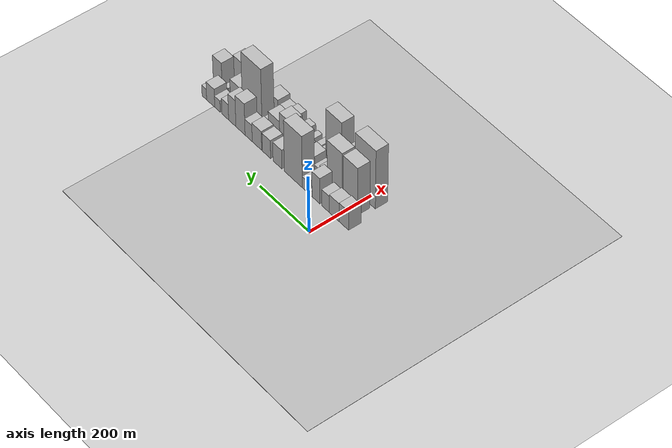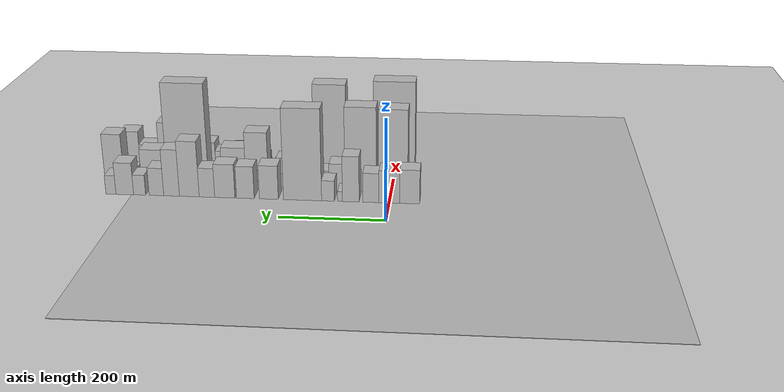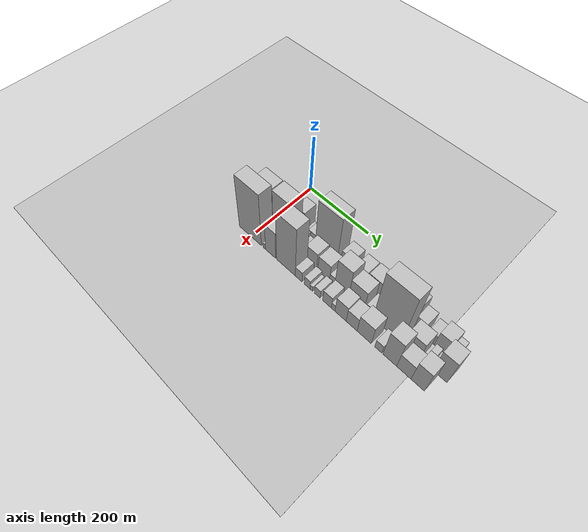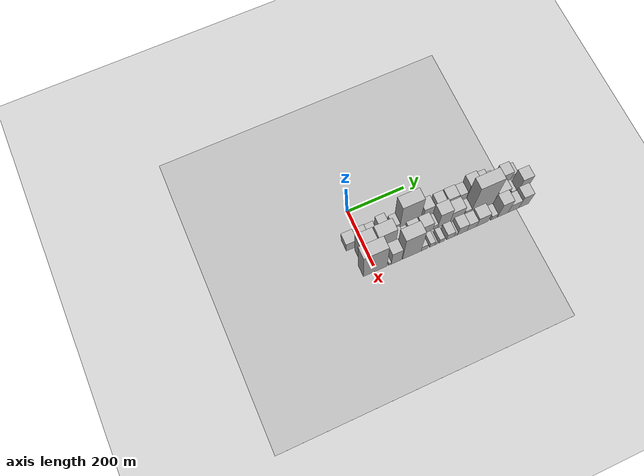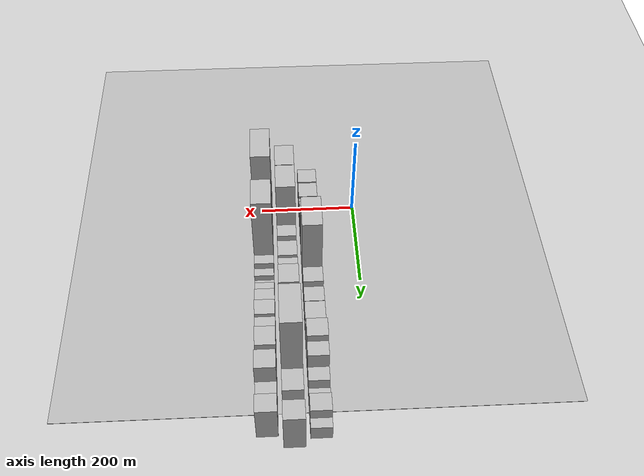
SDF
<sdf version="1.6">
 <world name="default">
  <include><name>ground_plane_1</name><uri>model://HANNAS_ground_plane</uri></include>
  <include>
   <name>ground_plane_2</name>
   <uri>model://HANNAS_ground_plane</uri>
   <pose>100 0 0  0 0 0</pose>
  </include>
  <model name="building_17">
   <static>1</static>
   <pose>100.0000 -38.5526 0 0.000000 0.000000 0.000000</pose>
   <link name="link">
    <pose>0 0 34.50 0 0 0</pose>
    <collision name="collision"><geometry><box><size>40.0000 37.9906 69.0000</size></box></geometry></collision>
    <visual name="visual">
     <cast_shadows>0</cast_shadows>
     <geometry><box><size>40.0000 37.9906 69.0000</size></box></geometry>
     <material>
      <script>
       <uri>model://HANNAS_wall/materials/scripts</uri>
       <uri>model://HANNAS_wall/materials/textures</uri>
       <name>vrc/HANNAS_wall</name>
      </script>
     </material>
    </visual>
   </link>
  </model>
  <model name="building_18">
   <static>1</static>
   <pose>100.0000 0.2296 0 0.000000 0.000000 0.000000</pose>
   <link name="link">
    <pose>0 0 33.00 0 0 0</pose>
    <collision name="collision"><geometry><box><size>40.0000 39.5738 66.0000</size></box></geometry></collision>
    <visual name="visual">
     <cast_shadows>0</cast_shadows>
     <geometry><box><size>40.0000 39.5738 66.0000</size></box></geometry>
     <material>
      <script>
       <uri>model://HANNAS_wall/materials/scripts</uri>
       <uri>model://HANNAS_wall/materials/textures</uri>
       <name>vrc/HANNAS_wall</name>
      </script>
     </material>
    </visual>
   </link>
  </model>
  <model name="building_19">
   <static>1</static>
   <pose>100.0000 35.4518 0 0.000000 0.000000 0.000000</pose>
   <link name="link">
    <pose>0 0 30.00 0 0 0</pose>
    <collision name="collision"><geometry><box><size>40.0000 30.8706 60.0000</size></box></geometry></collision>
    <visual name="visual">
     <cast_shadows>0</cast_shadows>
     <geometry><box><size>40.0000 30.8706 60.0000</size></box></geometry>
     <material>
      <script>
       <uri>model://HANNAS_wall/materials/scripts</uri>
       <uri>model://HANNAS_wall/materials/textures</uri>
       <name>vrc/HANNAS_wall</name>
      </script>
     </material>
    </visual>
   </link>
  </model>
  <model name="building_20">
   <static>1</static>
   <pose>100.0000 73.9305 0 0.000000 0.000000 0.000000</pose>
   <link name="link">
    <pose>0 0 46.50 0 0 0</pose>
    <collision name="collision"><geometry><box><size>40.0000 32.0868 93.0000</size></box></geometry></collision>
    <visual name="visual">
     <cast_shadows>0</cast_shadows>
     <geometry><box><size>40.0000 32.0868 93.0000</size></box></geometry>
     <material>
      <script>
       <uri>model://HANNAS_wall/materials/scripts</uri>
       <uri>model://HANNAS_wall/materials/textures</uri>
       <name>vrc/HANNAS_wall</name>
      </script>
     </material>
    </visual>
   </link>
  </model>
  <model name="building_21">
   <static>1</static>
   <pose>100.0000 94.6951 0 0.000000 0.000000 0.000000</pose>
   <link name="link">
    <pose>0 0 10.50 0 0 0</pose>
    <collision name="collision"><geometry><box><size>40.0000 9.4425 21.0000</size></box></geometry></collision>
    <visual name="visual">
     <cast_shadows>0</cast_shadows>
     <geometry><box><size>40.0000 9.4425 21.0000</size></box></geometry>
     <material>
      <script>
       <uri>model://HANNAS_wall/materials/scripts</uri>
       <uri>model://HANNAS_wall/materials/textures</uri>
       <name>vrc/HANNAS_wall</name>
      </script>
     </material>
    </visual>
   </link>
  </model>
  <model name="building_22">
   <static>1</static>
   <pose>100.0000 117.7082 0 0.000000 0.000000 0.000000</pose>
   <link name="link">
    <pose>0 0 21.00 0 0 0</pose>
    <collision name="collision"><geometry><box><size>40.0000 24.5837 42.0000</size></box></geometry></collision>
    <visual name="visual">
     <cast_shadows>0</cast_shadows>
     <geometry><box><size>40.0000 24.5837 42.0000</size></box></geometry>
     <material>
      <script>
       <uri>model://HANNAS_wall/materials/scripts</uri>
       <uri>model://HANNAS_wall/materials/textures</uri>
       <name>vrc/HANNAS_wall</name>
      </script>
     </material>
    </visual>
   </link>
  </model>
  <model name="building_23">
   <static>1</static>
   <pose>100.0000 166.8119 0 0.000000 0.000000 0.000000</pose>
   <link name="link">
    <pose>0 0 93.00 0 0 0</pose>
    <collision name="collision"><geometry><box><size>40.0000 73.6238 186.0000</size></box></geometry></collision>
    <visual name="visual">
     <cast_shadows>0</cast_shadows>
     <geometry><box><size>40.0000 73.6238 186.0000</size></box></geometry>
     <material>
      <script>
       <uri>model://HANNAS_wall/materials/scripts</uri>
       <uri>model://HANNAS_wall/materials/textures</uri>
       <name>vrc/HANNAS_wall</name>
      </script>
     </material>
    </visual>
   </link>
  </model>
  <model name="building_24">
   <static>1</static>
   <pose>100.0000 231.9970 0 0.000000 0.000000 0.000000</pose>
   <link name="link">
    <pose>0 0 34.50 0 0 0</pose>
    <collision name="collision"><geometry><box><size>40.0000 36.7465 69.0000</size></box></geometry></collision>
    <visual name="visual">
     <cast_shadows>0</cast_shadows>
     <geometry><box><size>40.0000 36.7465 69.0000</size></box></geometry>
     <material>
      <script>
       <uri>model://HANNAS_wall/materials/scripts</uri>
       <uri>model://HANNAS_wall/materials/textures</uri>
       <name>vrc/HANNAS_wall</name>
      </script>
     </material>
    </visual>
   </link>
  </model>
  <model name="building_25">
   <static>1</static>
   <pose>100.0000 277.5729 0 0.000000 0.000000 0.000000</pose>
   <link name="link">
    <pose>0 0 33.00 0 0 0</pose>
    <collision name="collision"><geometry><box><size>40.0000 34.4054 66.0000</size></box></geometry></collision>
    <visual name="visual">
     <cast_shadows>0</cast_shadows>
     <geometry><box><size>40.0000 34.4054 66.0000</size></box></geometry>
     <material>
      <script>
       <uri>model://HANNAS_wall/materials/scripts</uri>
       <uri>model://HANNAS_wall/materials/textures</uri>
       <name>vrc/HANNAS_wall</name>
      </script>
     </material>
    </visual>
   </link>
  </model>
  <model name="building_26">
   <static>1</static>
   <pose>100.0000 317.5310 0 0.000000 0.000000 0.000000</pose>
   <link name="link">
    <pose>0 0 34.50 0 0 0</pose>
    <collision name="collision"><geometry><box><size>40.0000 39.5108 69.0000</size></box></geometry></collision>
    <visual name="visual">
     <cast_shadows>0</cast_shadows>
     <geometry><box><size>40.0000 39.5108 69.0000</size></box></geometry>
     <material>
      <script>
       <uri>model://HANNAS_wall/materials/scripts</uri>
       <uri>model://HANNAS_wall/materials/textures</uri>
       <name>vrc/HANNAS_wall</name>
      </script>
     </material>
    </visual>
   </link>
  </model>
  <model name="building_27">
   <static>1</static>
   <pose>100.0000 352.3876 0 0.000000 0.000000 0.000000</pose>
   <link name="link">
    <pose>0 0 30.00 0 0 0</pose>
    <collision name="collision"><geometry><box><size>40.0000 30.2024 60.0000</size></box></geometry></collision>
    <visual name="visual">
     <cast_shadows>0</cast_shadows>
     <geometry><box><size>40.0000 30.2024 60.0000</size></box></geometry>
     <material>
      <script>
       <uri>model://HANNAS_wall/materials/scripts</uri>
       <uri>model://HANNAS_wall/materials/textures</uri>
       <name>vrc/HANNAS_wall</name>
      </script>
     </material>
    </visual>
   </link>
  </model>
  <model name="building_28">
   <static>1</static>
   <pose>100.0000 386.8651 0 0.000000 0.000000 0.000000</pose>
   <link name="link">
    <pose>0 0 57.00 0 0 0</pose>
    <collision name="collision"><geometry><box><size>40.0000 38.7527 114.0000</size></box></geometry></collision>
    <visual name="visual">
     <cast_shadows>0</cast_shadows>
     <geometry><box><size>40.0000 38.7527 114.0000</size></box></geometry>
     <material>
      <script>
       <uri>model://HANNAS_wall/materials/scripts</uri>
       <uri>model://HANNAS_wall/materials/textures</uri>
       <name>vrc/HANNAS_wall</name>
      </script>
     </material>
    </visual>
   </link>
  </model>
  <model name="building_29">
   <static>1</static>
   <pose>100.0000 421.6258 0 0.000000 0.000000 0.000000</pose>
   <link name="link">
    <pose>0 0 48.00 0 0 0</pose>
    <collision name="collision"><geometry><box><size>40.0000 30.7687 96.0000</size></box></geometry></collision>
    <visual name="visual">
     <cast_shadows>0</cast_shadows>
     <geometry><box><size>40.0000 30.7687 96.0000</size></box></geometry>
     <material>
      <script>
       <uri>model://HANNAS_wall/materials/scripts</uri>
       <uri>model://HANNAS_wall/materials/textures</uri>
       <name>vrc/HANNAS_wall</name>
      </script>
     </material>
    </visual>
   </link>
  </model>
  <model name="building_30">
   <static>1</static>
   <pose>100.0000 451.2960 0 0.000000 0.000000 0.000000</pose>
   <link name="link">
    <pose>0 0 28.50 0 0 0</pose>
    <collision name="collision"><geometry><box><size>40.0000 28.5716 57.0000</size></box></geometry></collision>
    <visual name="visual">
     <cast_shadows>0</cast_shadows>
     <geometry><box><size>40.0000 28.5716 57.0000</size></box></geometry>
     <material>
      <script>
       <uri>model://HANNAS_wall/materials/scripts</uri>
       <uri>model://HANNAS_wall/materials/textures</uri>
       <name>vrc/HANNAS_wall</name>
      </script>
     </material>
    </visual>
   </link>
  </model>
  <model name="building_31">
   <static>1</static>
   <pose>100.0000 484.3858 0 0.000000 0.000000 0.000000</pose>
   <link name="link">
    <pose>0 0 21.00 0 0 0</pose>
    <collision name="collision"><geometry><box><size>40.0000 23.6079 42.0000</size></box></geometry></collision>
    <visual name="visual">
     <cast_shadows>0</cast_shadows>
     <geometry><box><size>40.0000 23.6079 42.0000</size></box></geometry>
     <material>
      <script>
       <uri>model://HANNAS_wall/materials/scripts</uri>
       <uri>model://HANNAS_wall/materials/textures</uri>
       <name>vrc/HANNAS_wall</name>
      </script>
     </material>
    </visual>
   </link>
  </model>
  <model name="building_32">
   <static>1</static>
   <pose>100.0000 513.6715 0 0.000000 0.000000 0.000000</pose>
   <link name="link">
    <pose>0 0 33.00 0 0 0</pose>
    <collision name="collision"><geometry><box><size>40.0000 34.9635 66.0000</size></box></geometry></collision>
    <visual name="visual">
     <cast_shadows>0</cast_shadows>
     <geometry><box><size>40.0000 34.9635 66.0000</size></box></geometry>
     <material>
      <script>
       <uri>model://HANNAS_wall/materials/scripts</uri>
       <uri>model://HANNAS_wall/materials/textures</uri>
       <name>vrc/HANNAS_wall</name>
      </script>
     </material>
    </visual>
   </link>
  </model>
  <model name="building_33">
   <static>1</static>
   <pose>100.0000 541.0314 0 0.000000 0.000000 0.000000</pose>
   <link name="link">
    <pose>0 0 19.50 0 0 0</pose>
    <collision name="collision"><geometry><box><size>40.0000 19.7562 39.0000</size></box></geometry></collision>
    <visual name="visual">
     <cast_shadows>0</cast_shadows>
     <geometry><box><size>40.0000 19.7562 39.0000</size></box></geometry>
     <material>
      <script>
       <uri>model://HANNAS_wall/materials/scripts</uri>
       <uri>model://HANNAS_wall/materials/textures</uri>
       <name>vrc/HANNAS_wall</name>
      </script>
     </material>
    </visual>
   </link>
  </model>
  <model name="building_51">
   <static>1</static>
   <pose>149.0000 -3.1901 0 0.000000 0.000000 0.000000</pose>
   <link name="link">
    <pose>0 0 85.50 0 0 0</pose>
    <collision name="collision"><geometry><box><size>40.0000 57.1981 171.0000</size></box></geometry></collision>
    <visual name="visual">
     <cast_shadows>0</cast_shadows>
     <geometry><box><size>40.0000 57.1981 171.0000</size></box></geometry>
     <material>
      <script>
       <uri>model://HANNAS_wall/materials/scripts</uri>
       <uri>model://HANNAS_wall/materials/textures</uri>
       <name>vrc/HANNAS_wall</name>
      </script>
     </material>
    </visual>
   </link>
  </model>
  <model name="building_52">
   <static>1</static>
   <pose>149.0000 59.9983 0 0.000000 0.000000 0.000000</pose>
   <link name="link">
    <pose>0 0 87.00 0 0 0</pose>
    <collision name="collision"><geometry><box><size>40.0000 61.1785 174.0000</size></box></geometry></collision>
    <visual name="visual">
     <cast_shadows>0</cast_shadows>
     <geometry><box><size>40.0000 61.1785 174.0000</size></box></geometry>
     <material>
      <script>
       <uri>model://HANNAS_wall/materials/scripts</uri>
       <uri>model://HANNAS_wall/materials/textures</uri>
       <name>vrc/HANNAS_wall</name>
      </script>
     </material>
    </visual>
   </link>
  </model>
  <model name="building_53">
   <static>1</static>
   <pose>149.0000 105.9082 0 0.000000 0.000000 0.000000</pose>
   <link name="link">
    <pose>0 0 28.50 0 0 0</pose>
    <collision name="collision"><geometry><box><size>40.0000 30.6414 57.0000</size></box></geometry></collision>
    <visual name="visual">
     <cast_shadows>0</cast_shadows>
     <geometry><box><size>40.0000 30.6414 57.0000</size></box></geometry>
     <material>
      <script>
       <uri>model://HANNAS_wall/materials/scripts</uri>
       <uri>model://HANNAS_wall/materials/textures</uri>
       <name>vrc/HANNAS_wall</name>
      </script>
     </material>
    </visual>
   </link>
  </model>
  <model name="building_54">
   <static>1</static>
   <pose>149.0000 132.3277 0 0.000000 0.000000 0.000000</pose>
   <link name="link">
    <pose>0 0 21.00 0 0 0</pose>
    <collision name="collision"><geometry><box><size>40.0000 22.1977 42.0000</size></box></geometry></collision>
    <visual name="visual">
     <cast_shadows>0</cast_shadows>
     <geometry><box><size>40.0000 22.1977 42.0000</size></box></geometry>
     <material>
      <script>
       <uri>model://HANNAS_wall/materials/scripts</uri>
       <uri>model://HANNAS_wall/materials/textures</uri>
       <name>vrc/HANNAS_wall</name>
      </script>
     </material>
    </visual>
   </link>
  </model>
  <model name="building_55">
   <static>1</static>
   <pose>149.0000 162.5598 0 0.000000 0.000000 0.000000</pose>
   <link name="link">
    <pose>0 0 34.50 0 0 0</pose>
    <collision name="collision"><geometry><box><size>40.0000 38.2664 69.0000</size></box></geometry></collision>
    <visual name="visual">
     <cast_shadows>0</cast_shadows>
     <geometry><box><size>40.0000 38.2664 69.0000</size></box></geometry>
     <material>
      <script>
       <uri>model://HANNAS_wall/materials/scripts</uri>
       <uri>model://HANNAS_wall/materials/textures</uri>
       <name>vrc/HANNAS_wall</name>
      </script>
     </material>
    </visual>
   </link>
  </model>
  <model name="building_56">
   <static>1</static>
   <pose>149.0000 204.9134 0 0.000000 0.000000 0.000000</pose>
   <link name="link">
    <pose>0 0 33.00 0 0 0</pose>
    <collision name="collision"><geometry><box><size>40.0000 38.4408 66.0000</size></box></geometry></collision>
    <visual name="visual">
     <cast_shadows>0</cast_shadows>
     <geometry><box><size>40.0000 38.4408 66.0000</size></box></geometry>
     <material>
      <script>
       <uri>model://HANNAS_wall/materials/scripts</uri>
       <uri>model://HANNAS_wall/materials/textures</uri>
       <name>vrc/HANNAS_wall</name>
      </script>
     </material>
    </visual>
   </link>
  </model>
  <model name="building_57">
   <static>1</static>
   <pose>149.0000 232.5292 0 0.000000 0.000000 0.000000</pose>
   <link name="link">
    <pose>0 0 16.50 0 0 0</pose>
    <collision name="collision"><geometry><box><size>40.0000 16.7909 33.0000</size></box></geometry></collision>
    <visual name="visual">
     <cast_shadows>0</cast_shadows>
     <geometry><box><size>40.0000 16.7909 33.0000</size></box></geometry>
     <material>
      <script>
       <uri>model://HANNAS_wall/materials/scripts</uri>
       <uri>model://HANNAS_wall/materials/textures</uri>
       <name>vrc/HANNAS_wall</name>
      </script>
     </material>
    </visual>
   </link>
  </model>
  <model name="building_58">
   <static>1</static>
   <pose>149.0000 263.1174 0 0.000000 0.000000 0.000000</pose>
   <link name="link">
    <pose>0 0 58.50 0 0 0</pose>
    <collision name="collision"><geometry><box><size>40.0000 44.3855 117.0000</size></box></geometry></collision>
    <visual name="visual">
     <cast_shadows>0</cast_shadows>
     <geometry><box><size>40.0000 44.3855 117.0000</size></box></geometry>
     <material>
      <script>
       <uri>model://HANNAS_wall/materials/scripts</uri>
       <uri>model://HANNAS_wall/materials/textures</uri>
       <name>vrc/HANNAS_wall</name>
      </script>
     </material>
    </visual>
   </link>
  </model>
  <model name="building_59">
   <static>1</static>
   <pose>149.0000 308.9453 0 0.000000 0.000000 0.000000</pose>
   <link name="link">
    <pose>0 0 42.00 0 0 0</pose>
    <collision name="collision"><geometry><box><size>40.0000 47.2703 84.0000</size></box></geometry></collision>
    <visual name="visual">
     <cast_shadows>0</cast_shadows>
     <geometry><box><size>40.0000 47.2703 84.0000</size></box></geometry>
     <material>
      <script>
       <uri>model://HANNAS_wall/materials/scripts</uri>
       <uri>model://HANNAS_wall/materials/textures</uri>
       <name>vrc/HANNAS_wall</name>
      </script>
     </material>
    </visual>
   </link>
  </model>
  <model name="building_60">
   <static>1</static>
   <pose>149.0000 347.9798 0 0.000000 0.000000 0.000000</pose>
   <link name="link">
    <pose>0 0 19.50 0 0 0</pose>
    <collision name="collision"><geometry><box><size>40.0000 22.7987 39.0000</size></box></geometry></collision>
    <visual name="visual">
     <cast_shadows>0</cast_shadows>
     <geometry><box><size>40.0000 22.7987 39.0000</size></box></geometry>
     <material>
      <script>
       <uri>model://HANNAS_wall/materials/scripts</uri>
       <uri>model://HANNAS_wall/materials/textures</uri>
       <name>vrc/HANNAS_wall</name>
      </script>
     </material>
    </visual>
   </link>
  </model>
  <model name="building_61">
   <static>1</static>
   <pose>149.0000 400.7476 0 0.000000 0.000000 0.000000</pose>
   <link name="link">
    <pose>0 0 106.50 0 0 0</pose>
    <collision name="collision"><geometry><box><size>40.0000 82.7369 213.0000</size></box></geometry></collision>
    <visual name="visual">
     <cast_shadows>0</cast_shadows>
     <geometry><box><size>40.0000 82.7369 213.0000</size></box></geometry>
     <material>
      <script>
       <uri>model://HANNAS_wall/materials/scripts</uri>
       <uri>model://HANNAS_wall/materials/textures</uri>
       <name>vrc/HANNAS_wall</name>
      </script>
     </material>
    </visual>
   </link>
  </model>
  <model name="building_62">
   <static>1</static>
   <pose>149.0000 471.4215 0 0.000000 0.000000 0.000000</pose>
   <link name="link">
    <pose>0 0 37.50 0 0 0</pose>
    <collision name="collision"><geometry><box><size>40.0000 44.6109 75.0000</size></box></geometry></collision>
    <visual name="visual">
     <cast_shadows>0</cast_shadows>
     <geometry><box><size>40.0000 44.6109 75.0000</size></box></geometry>
     <material>
      <script>
       <uri>model://HANNAS_wall/materials/scripts</uri>
       <uri>model://HANNAS_wall/materials/textures</uri>
       <name>vrc/HANNAS_wall</name>
      </script>
     </material>
    </visual>
   </link>
  </model>
  <model name="building_63">
   <static>1</static>
   <pose>149.0000 511.1245 0 0.000000 0.000000 0.000000</pose>
   <link name="link">
    <pose>0 0 16.50 0 0 0</pose>
    <collision name="collision"><geometry><box><size>40.0000 16.7951 33.0000</size></box></geometry></collision>
    <visual name="visual">
     <cast_shadows>0</cast_shadows>
     <geometry><box><size>40.0000 16.7951 33.0000</size></box></geometry>
     <material>
      <script>
       <uri>model://HANNAS_wall/materials/scripts</uri>
       <uri>model://HANNAS_wall/materials/textures</uri>
       <name>vrc/HANNAS_wall</name>
      </script>
     </material>
    </visual>
   </link>
  </model>
  <model name="building_64">
   <static>1</static>
   <pose>149.0000 547.6599 0 0.000000 0.000000 0.000000</pose>
   <link name="link">
    <pose>0 0 52.50 0 0 0</pose>
    <collision name="collision"><geometry><box><size>40.0000 38.2757 105.0000</size></box></geometry></collision>
    <visual name="visual">
     <cast_shadows>0</cast_shadows>
     <geometry><box><size>40.0000 38.2757 105.0000</size></box></geometry>
     <material>
      <script>
       <uri>model://HANNAS_wall/materials/scripts</uri>
       <uri>model://HANNAS_wall/materials/textures</uri>
       <name>vrc/HANNAS_wall</name>
      </script>
     </material>
    </visual>
   </link>
  </model>
  <model name="building_81">
   <static>1</static>
   <pose>198.0000 -2.0686 0 0.000000 0.000000 0.000000</pose>
   <link name="link">
    <pose>0 0 105.00 0 0 0</pose>
    <collision name="collision"><geometry><box><size>40.0000 81.4682 210.0000</size></box></geometry></collision>
    <visual name="visual">
     <cast_shadows>0</cast_shadows>
     <geometry><box><size>40.0000 81.4682 210.0000</size></box></geometry>
     <material>
      <script>
       <uri>model://HANNAS_wall/materials/scripts</uri>
       <uri>model://HANNAS_wall/materials/textures</uri>
       <name>vrc/HANNAS_wall</name>
      </script>
     </material>
    </visual>
   </link>
  </model>
  <model name="building_82">
   <static>1</static>
   <pose>198.0000 49.1803 0 0.000000 0.000000 0.000000</pose>
   <link name="link">
    <pose>0 0 10.50 0 0 0</pose>
    <collision name="collision"><geometry><box><size>40.0000 9.0295 21.0000</size></box></geometry></collision>
    <visual name="visual">
     <cast_shadows>0</cast_shadows>
     <geometry><box><size>40.0000 9.0295 21.0000</size></box></geometry>
     <material>
      <script>
       <uri>model://HANNAS_wall/materials/scripts</uri>
       <uri>model://HANNAS_wall/materials/textures</uri>
       <name>vrc/HANNAS_wall</name>
      </script>
     </material>
    </visual>
   </link>
  </model>
  <model name="building_83">
   <static>1</static>
   <pose>198.0000 71.7832 0 0.000000 0.000000 0.000000</pose>
   <link name="link">
    <pose>0 0 55.50 0 0 0</pose>
    <collision name="collision"><geometry><box><size>40.0000 36.1765 111.0000</size></box></geometry></collision>
    <visual name="visual">
     <cast_shadows>0</cast_shadows>
     <geometry><box><size>40.0000 36.1765 111.0000</size></box></geometry>
     <material>
      <script>
       <uri>model://HANNAS_wall/materials/scripts</uri>
       <uri>model://HANNAS_wall/materials/textures</uri>
       <name>vrc/HANNAS_wall</name>
      </script>
     </material>
    </visual>
   </link>
  </model>
  <model name="building_84">
   <static>1</static>
   <pose>198.0000 125.2555 0 0.000000 0.000000 0.000000</pose>
   <link name="link">
    <pose>0 0 100.50 0 0 0</pose>
    <collision name="collision"><geometry><box><size>40.0000 64.7682 201.0000</size></box></geometry></collision>
    <visual name="visual">
     <cast_shadows>0</cast_shadows>
     <geometry><box><size>40.0000 64.7682 201.0000</size></box></geometry>
     <material>
      <script>
       <uri>model://HANNAS_wall/materials/scripts</uri>
       <uri>model://HANNAS_wall/materials/textures</uri>
       <name>vrc/HANNAS_wall</name>
      </script>
     </material>
    </visual>
   </link>
  </model>
  <model name="building_85">
   <static>1</static>
   <pose>198.0000 168.9163 0 0.000000 0.000000 0.000000</pose>
   <link name="link">
    <pose>0 0 21.00 0 0 0</pose>
    <collision name="collision"><geometry><box><size>40.0000 22.5534 42.0000</size></box></geometry></collision>
    <visual name="visual">
     <cast_shadows>0</cast_shadows>
     <geometry><box><size>40.0000 22.5534 42.0000</size></box></geometry>
     <material>
      <script>
       <uri>model://HANNAS_wall/materials/scripts</uri>
       <uri>model://HANNAS_wall/materials/textures</uri>
       <name>vrc/HANNAS_wall</name>
      </script>
     </material>
    </visual>
   </link>
  </model>
  <model name="building_86">
   <static>1</static>
   <pose>198.0000 197.5334 0 0.000000 0.000000 0.000000</pose>
   <link name="link">
    <pose>0 0 18.00 0 0 0</pose>
    <collision name="collision"><geometry><box><size>40.0000 18.6807 36.0000</size></box></geometry></collision>
    <visual name="visual">
     <cast_shadows>0</cast_shadows>
     <geometry><box><size>40.0000 18.6807 36.0000</size></box></geometry>
     <material>
      <script>
       <uri>model://HANNAS_wall/materials/scripts</uri>
       <uri>model://HANNAS_wall/materials/textures</uri>
       <name>vrc/HANNAS_wall</name>
      </script>
     </material>
    </visual>
   </link>
  </model>
  <model name="building_87">
   <static>1</static>
   <pose>198.0000 211.1979 0 0.000000 0.000000 0.000000</pose>
   <link name="link">
    <pose>0 0 10.50 0 0 0</pose>
    <collision name="collision"><geometry><box><size>40.0000 8.6483 21.0000</size></box></geometry></collision>
    <visual name="visual">
     <cast_shadows>0</cast_shadows>
     <geometry><box><size>40.0000 8.6483 21.0000</size></box></geometry>
     <material>
      <script>
       <uri>model://HANNAS_wall/materials/scripts</uri>
       <uri>model://HANNAS_wall/materials/textures</uri>
       <name>vrc/HANNAS_wall</name>
      </script>
     </material>
    </visual>
   </link>
  </model>
  <model name="building_88">
   <static>1</static>
   <pose>198.0000 230.7799 0 0.000000 0.000000 0.000000</pose>
   <link name="link">
    <pose>0 0 16.50 0 0 0</pose>
    <collision name="collision"><geometry><box><size>40.0000 18.5157 33.0000</size></box></geometry></collision>
    <visual name="visual">
     <cast_shadows>0</cast_shadows>
     <geometry><box><size>40.0000 18.5157 33.0000</size></box></geometry>
     <material>
      <script>
       <uri>model://HANNAS_wall/materials/scripts</uri>
       <uri>model://HANNAS_wall/materials/textures</uri>
       <name>vrc/HANNAS_wall</name>
      </script>
     </material>
    </visual>
   </link>
  </model>
  <model name="building_89">
   <static>1</static>
   <pose>198.0000 261.8486 0 0.000000 0.000000 0.000000</pose>
   <link name="link">
    <pose>0 0 24.00 0 0 0</pose>
    <collision name="collision"><geometry><box><size>40.0000 27.6217 48.0000</size></box></geometry></collision>
    <visual name="visual">
     <cast_shadows>0</cast_shadows>
     <geometry><box><size>40.0000 27.6217 48.0000</size></box></geometry>
     <material>
      <script>
       <uri>model://HANNAS_wall/materials/scripts</uri>
       <uri>model://HANNAS_wall/materials/textures</uri>
       <name>vrc/HANNAS_wall</name>
      </script>
     </material>
    </visual>
   </link>
  </model>
  <model name="building_90">
   <static>1</static>
   <pose>198.0000 281.2986 0 0.000000 0.000000 0.000000</pose>
   <link name="link">
    <pose>0 0 13.50 0 0 0</pose>
    <collision name="collision"><geometry><box><size>40.0000 11.2782 27.0000</size></box></geometry></collision>
    <visual name="visual">
     <cast_shadows>0</cast_shadows>
     <geometry><box><size>40.0000 11.2782 27.0000</size></box></geometry>
     <material>
      <script>
       <uri>model://HANNAS_wall/materials/scripts</uri>
       <uri>model://HANNAS_wall/materials/textures</uri>
       <name>vrc/HANNAS_wall</name>
      </script>
     </material>
    </visual>
   </link>
  </model>
  <model name="building_91">
   <static>1</static>
   <pose>198.0000 304.1629 0 0.000000 0.000000 0.000000</pose>
   <link name="link">
    <pose>0 0 33.00 0 0 0</pose>
    <collision name="collision"><geometry><box><size>40.0000 34.4505 66.0000</size></box></geometry></collision>
    <visual name="visual">
     <cast_shadows>0</cast_shadows>
     <geometry><box><size>40.0000 34.4505 66.0000</size></box></geometry>
     <material>
      <script>
       <uri>model://HANNAS_wall/materials/scripts</uri>
       <uri>model://HANNAS_wall/materials/textures</uri>
       <name>vrc/HANNAS_wall</name>
      </script>
     </material>
    </visual>
   </link>
  </model>
  <model name="building_92">
   <static>1</static>
   <pose>198.0000 338.0910 0 0.000000 0.000000 0.000000</pose>
   <link name="link">
    <pose>0 0 28.50 0 0 0</pose>
    <collision name="collision"><geometry><box><size>40.0000 33.4057 57.0000</size></box></geometry></collision>
    <visual name="visual">
     <cast_shadows>0</cast_shadows>
     <geometry><box><size>40.0000 33.4057 57.0000</size></box></geometry>
     <material>
      <script>
       <uri>model://HANNAS_wall/materials/scripts</uri>
       <uri>model://HANNAS_wall/materials/textures</uri>
       <name>vrc/HANNAS_wall</name>
      </script>
     </material>
    </visual>
   </link>
  </model>
  <model name="building_93">
   <static>1</static>
   <pose>198.0000 375.6528 0 0.000000 0.000000 0.000000</pose>
   <link name="link">
    <pose>0 0 37.50 0 0 0</pose>
    <collision name="collision"><geometry><box><size>40.0000 41.7179 75.0000</size></box></geometry></collision>
    <visual name="visual">
     <cast_shadows>0</cast_shadows>
     <geometry><box><size>40.0000 41.7179 75.0000</size></box></geometry>
     <material>
      <script>
       <uri>model://HANNAS_wall/materials/scripts</uri>
       <uri>model://HANNAS_wall/materials/textures</uri>
       <name>vrc/HANNAS_wall</name>
      </script>
     </material>
    </visual>
   </link>
  </model>
  <model name="building_94">
   <static>1</static>
   <pose>198.0000 416.8925 0 0.000000 0.000000 0.000000</pose>
   <link name="link">
    <pose>0 0 18.00 0 0 0</pose>
    <collision name="collision"><geometry><box><size>40.0000 20.7614 36.0000</size></box></geometry></collision>
    <visual name="visual">
     <cast_shadows>0</cast_shadows>
     <geometry><box><size>40.0000 20.7614 36.0000</size></box></geometry>
     <material>
      <script>
       <uri>model://HANNAS_wall/materials/scripts</uri>
       <uri>model://HANNAS_wall/materials/textures</uri>
       <name>vrc/HANNAS_wall</name>
      </script>
     </material>
    </visual>
   </link>
  </model>
  <model name="building_95">
   <static>1</static>
   <pose>198.0000 449.5290 0 0.000000 0.000000 0.000000</pose>
   <link name="link">
    <pose>0 0 57.00 0 0 0</pose>
    <collision name="collision"><geometry><box><size>40.0000 38.5118 114.0000</size></box></geometry></collision>
    <visual name="visual">
     <cast_shadows>0</cast_shadows>
     <geometry><box><size>40.0000 38.5118 114.0000</size></box></geometry>
     <material>
      <script>
       <uri>model://HANNAS_wall/materials/scripts</uri>
       <uri>model://HANNAS_wall/materials/textures</uri>
       <name>vrc/HANNAS_wall</name>
      </script>
     </material>
    </visual>
   </link>
  </model>
  <model name="building_96">
   <static>1</static>
   <pose>198.0000 488.4735 0 0.000000 0.000000 0.000000</pose>
   <link name="link">
    <pose>0 0 33.00 0 0 0</pose>
    <collision name="collision"><geometry><box><size>40.0000 39.3772 66.0000</size></box></geometry></collision>
    <visual name="visual">
     <cast_shadows>0</cast_shadows>
     <geometry><box><size>40.0000 39.3772 66.0000</size></box></geometry>
     <material>
      <script>
       <uri>model://HANNAS_wall/materials/scripts</uri>
       <uri>model://HANNAS_wall/materials/textures</uri>
       <name>vrc/HANNAS_wall</name>
      </script>
     </material>
    </visual>
   </link>
  </model>
  <model name="building_97">
   <static>1</static>
   <pose>198.0000 526.1113 0 0.000000 0.000000 0.000000</pose>
   <link name="link">
    <pose>0 0 46.50 0 0 0</pose>
    <collision name="collision"><geometry><box><size>40.0000 35.8983 93.0000</size></box></geometry></collision>
    <visual name="visual">
     <cast_shadows>0</cast_shadows>
     <geometry><box><size>40.0000 35.8983 93.0000</size></box></geometry>
     <material>
      <script>
       <uri>model://HANNAS_wall/materials/scripts</uri>
       <uri>model://HANNAS_wall/materials/textures</uri>
       <name>vrc/HANNAS_wall</name>
      </script>
     </material>
    </visual>
   </link>
  </model>
 </world>
</sdf>
